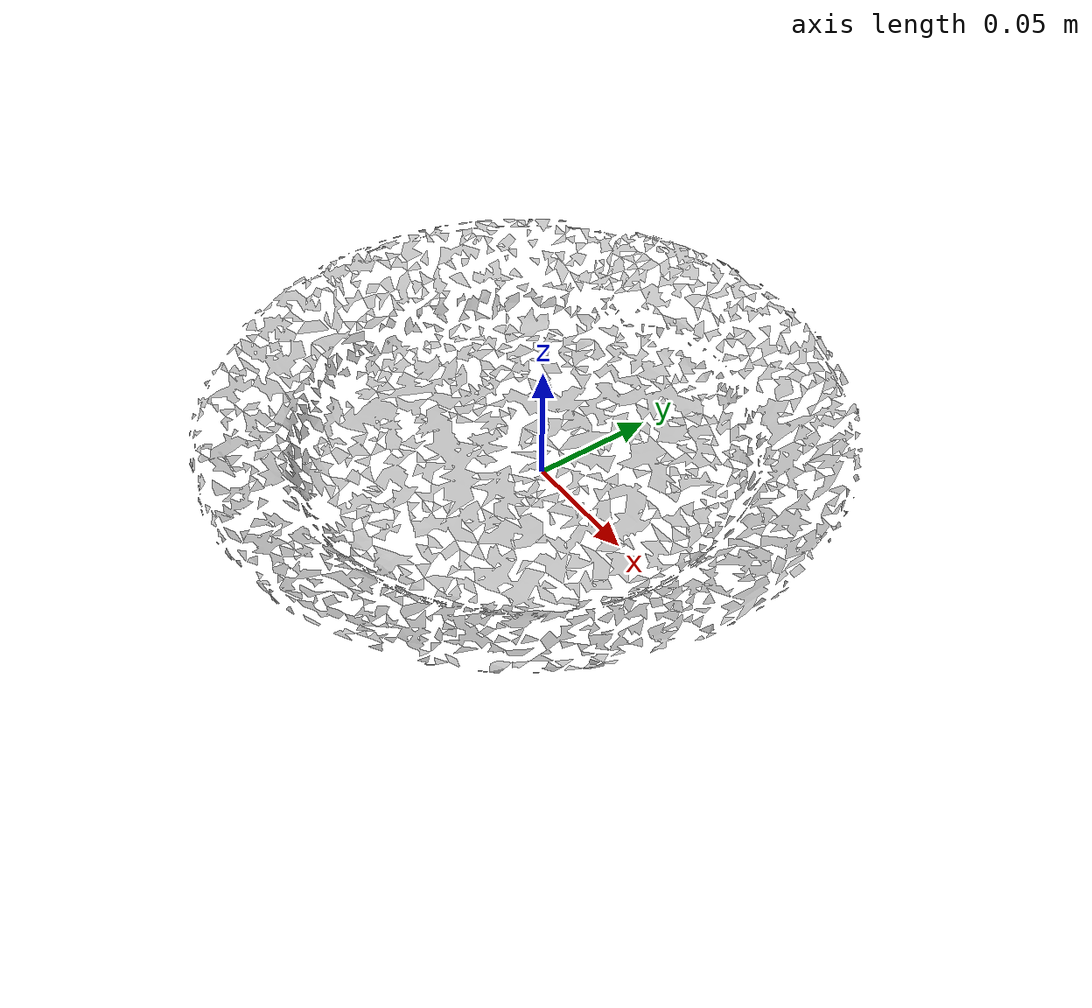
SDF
<?xml version='1.0'?>
<sdf version="1.4">
  <model name="plate">
    <static>false</static>
    <link name="link">
      <inertial>
        <pose>-0.010005972478719946 0.0012469395633811198 0.008849692580074854 2.633955452833124 -1.561417041564308 -2.1575461432989793</pose>
        <mass>5.7831861697350493e-05</mass>
        <inertia>
          <ixx>5.195351956272859e-07</ixx>
          <ixy>4.410443421825204e-23</ixy>
          <ixz>-4.0892141094859386e-23</ixz>
          <iyy>2.6593460524929607e-07</iyy>
          <iyz>1.9489066348453446e-23</iyz>
          <izz>2.638462025944955e-07</izz>
        </inertia>
      </inertial>
      <collision name="collision">
        <geometry>
          <mesh>
            <!-- Use a downsampled mesh for collisions -->
            <uri>model://029_plate/downsampled.obj</uri>
	        </mesh>
        </geometry>
        <surface>
      </surface>
      </collision>
      <visual name="visual">
        <geometry>
          <mesh>
            <uri>model://029_plate/google_16k/textured.obj</uri>
	        </mesh>
        </geometry>
        <material>
          <script>
            <uri>model://029_plate/plate.material</uri>
            <name>plate</name>
          </script>
        </material>
      </visual>
    </link>
  </model>
</sdf>
